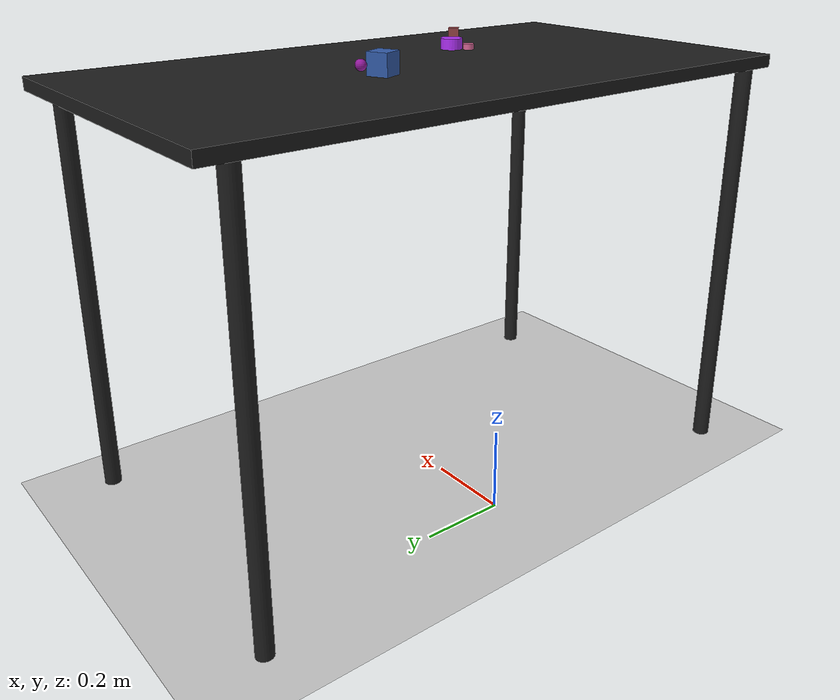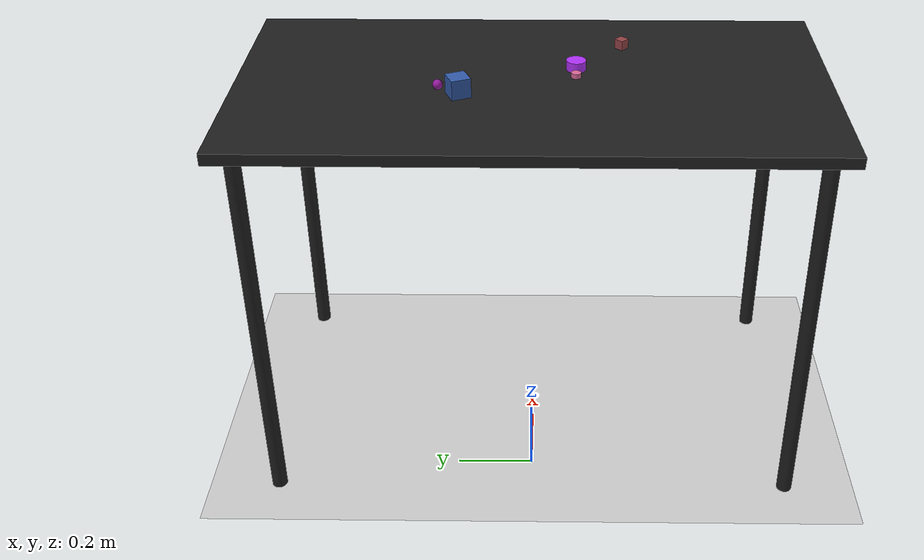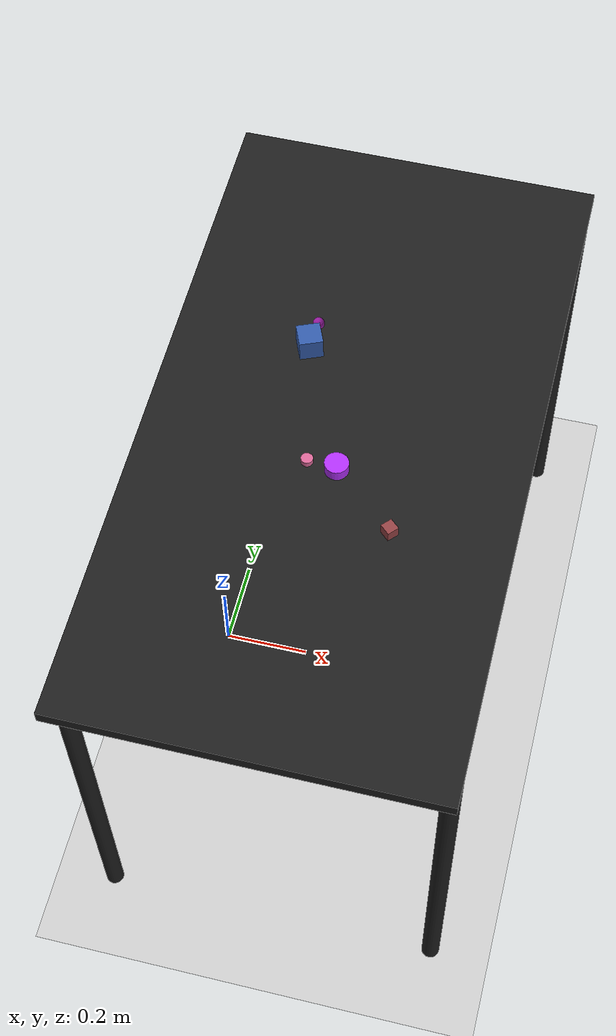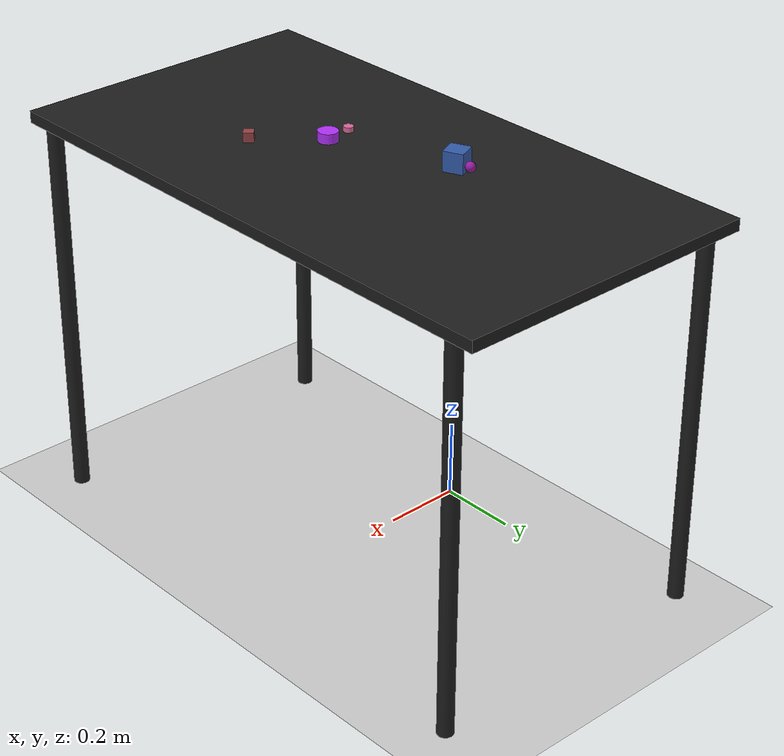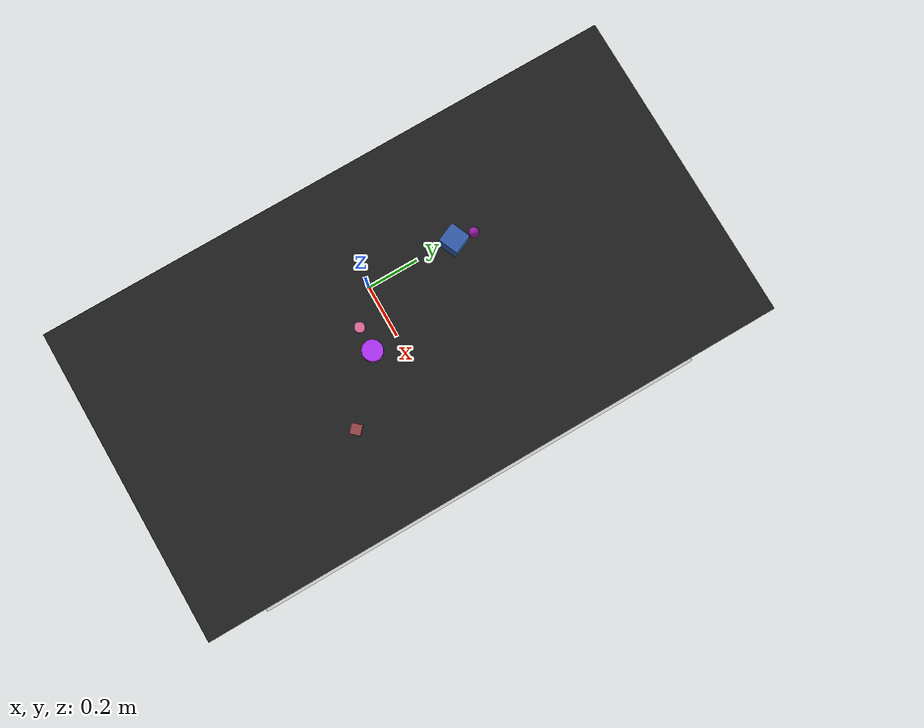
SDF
<?xml version="1.0" ?>
<sdf version="1.6">
  <world name="arm_world">
    <plugin filename="gz-sim-physics-system" name="gz::sim::systems::Physics">
      <engine>
        <filename>libgz-physics-bullet-featherstone-plugin.so</filename>
      </engine>
    </plugin>
    <plugin filename="gz-sim-user-commands-system" name="gz::sim::systems::UserCommands"/>
    <plugin filename="gz-sim-scene-broadcaster-system" name="gz::sim::systems::SceneBroadcaster"/>
    <plugin filename="gz-sim-sensors-system" name="gz::sim::systems::Sensors">
      <render_engine>ogre2</render_engine>
    </plugin>
    <gravity>0.0 0.0 -9.8</gravity>
    <scene>
      <shadows>false</shadows>
    </scene>
    <gui>
      <camera name="user_camera">
        <pose>0.75 -0.75 1.4 0 0.29 2.21</pose>
      </camera>
    </gui>
    <include>
      <uri>https://fuel.gazebosim.org/1.0/OpenRobotics/models/Sun</uri>
    </include>
    <model name="table">
      <static>true</static>
      <include>
        <uri>model://table</uri>
      </include>
      <pose>0.29 0 0 0 0 1.5708</pose>
    </model>
    <model name="ground_plane">
      <static>true</static>
      <link name="link">
        <collision name="collision">
          <geometry>
            <plane>
              <normal>0 0 1</normal>
            </plane>
          </geometry>
          <surface>
            <friction>
              <ode>
                <mu>1.0</mu>
                <mu2>1.0</mu2>
              </ode>
            </friction>
          </surface>
        </collision>
        <visual name="visual">
          <geometry>
            <plane>
              <normal>0 0 1</normal>
              <size>100 100</size>
            </plane>
          </geometry>
          <material>
            <ambient>0.8 0.8 0.8 1</ambient>
            <diffuse>0.8 0.8 0.8 1</diffuse>
            <specular>0.8 0.8 0.8 1</specular>
          </material>
        </visual>
      </link>
    </model>
    <model name="cylinder_s_0">
      <pose>0.249 -0.107 1.05 0 0 5.0</pose>
      <link name="cylinder_s_0_link">
        <inertial>
          <mass>0.05</mass>
          <inertia>
            <ixx>2.04e-7</ixx>
            <iyy>2.04e-7</iyy>
            <izz>3.9e-8</izz>
            <ixy>0</ixy>
            <ixz>0</ixz>
            <iyz>0</iyz>
          </inertia>
        </inertial>
        <collision name="cylinder_s_0_collision">
          <geometry>
            <cylinder>
              <radius>0.0125</radius>
              <length>0.0125</length>
            </cylinder>
          </geometry>
          <surface>
            <friction>
              <ode>
                <mu>0.8</mu>
                <mu2>0.8</mu2>
                <fdir1>0 0 1</fdir1>
                <slip1>0.001</slip1>
                <slip2>0.001</slip2>
              </ode>
              <torsional>
                <coefficient>0.1</coefficient>
                <surface_radius>0.015</surface_radius>
                <use_patch_radius>true</use_patch_radius>
              </torsional>
            </friction>
            <contact>
              <ode>
                <kp>1e5</kp>
                <kd>10</kd>
                <max_vel>0.1</max_vel>
                <min_depth>0.001</min_depth>
                <soft_cfm>0.01</soft_cfm>
                <soft_erp>0.2</soft_erp>
              </ode>
            </contact>
            <bounce>
              <restitution_coefficient>0.2</restitution_coefficient>
              <threshold>0.01</threshold>
            </bounce>
          </surface>
        </collision>
        <visual name="cylinder_s_0_visual">
          <geometry>
            <cylinder>
              <radius>0.0125</radius>
              <length>0.0125</length>
            </cylinder>
          </geometry>
          <material>
            <ambient>0.86 0.41 0.6 1</ambient>
            <diffuse>0.86 0.41 0.6 1</diffuse>
          </material>
        </visual>
        <velocity_decay>
          <linear>1</linear>
          <angular>1</angular>
        </velocity_decay>
      </link>
    </model>
    <model name="cylinder_m_1">
      <pose>0.31 -0.108 1.05 0 0 5.37</pose>
      <link name="cylinder_m_1_link">
        <inertial>
          <mass>0.05</mass>
          <inertia>
            <ixx>2.04e-7</ixx>
            <iyy>2.04e-7</iyy>
            <izz>3.9e-8</izz>
            <ixy>0</ixy>
            <ixz>0</ixz>
            <iyz>0</iyz>
          </inertia>
        </inertial>
        <collision name="cylinder_m_1_collision">
          <geometry>
            <cylinder>
              <radius>0.025</radius>
              <length>0.025</length>
            </cylinder>
          </geometry>
          <surface>
            <friction>
              <ode>
                <mu>0.8</mu>
                <mu2>0.8</mu2>
                <fdir1>0 0 1</fdir1>
                <slip1>0.001</slip1>
                <slip2>0.001</slip2>
              </ode>
              <torsional>
                <coefficient>0.1</coefficient>
                <surface_radius>0.015</surface_radius>
                <use_patch_radius>true</use_patch_radius>
              </torsional>
            </friction>
            <contact>
              <ode>
                <kp>1e5</kp>
                <kd>10</kd>
                <max_vel>0.1</max_vel>
                <min_depth>0.001</min_depth>
                <soft_cfm>0.01</soft_cfm>
                <soft_erp>0.2</soft_erp>
              </ode>
            </contact>
            <bounce>
              <restitution_coefficient>0.2</restitution_coefficient>
              <threshold>0.01</threshold>
            </bounce>
          </surface>
        </collision>
        <visual name="cylinder_m_1_visual">
          <geometry>
            <cylinder>
              <radius>0.025</radius>
              <length>0.025</length>
            </cylinder>
          </geometry>
          <material>
            <ambient>0.7 0.19 0.98 1</ambient>
            <diffuse>0.7 0.19 0.98 1</diffuse>
          </material>
        </visual>
        <velocity_decay>
          <linear>1</linear>
          <angular>1</angular>
        </velocity_decay>
      </link>
    </model>
    <model name="cube_m_2">
      <pose>0.182 0.181 1.05 0 0 0.4</pose>
      <link name="cube_m_2_link">
        <inertial>
          <mass>0.05</mass>
          <inertia>
            <ixx>2.04e-7</ixx>
            <iyy>2.04e-7</iyy>
            <izz>3.9e-8</izz>
            <ixy>0</ixy>
            <ixz>0</ixz>
            <iyz>0</iyz>
          </inertia>
        </inertial>
        <collision name="cube_m_2_collision">
          <geometry>
            <box>
              <size>0.05 0.05 0.05</size>
            </box>
          </geometry>
          <surface>
            <friction>
              <ode>
                <mu>0.8</mu>
                <mu2>0.8</mu2>
                <fdir1>0 0 1</fdir1>
                <slip1>0.001</slip1>
                <slip2>0.001</slip2>
              </ode>
              <torsional>
                <coefficient>0.1</coefficient>
                <surface_radius>0.015</surface_radius>
                <use_patch_radius>true</use_patch_radius>
              </torsional>
            </friction>
            <contact>
              <ode>
                <kp>1e5</kp>
                <kd>10</kd>
                <max_vel>0.1</max_vel>
                <min_depth>0.001</min_depth>
                <soft_cfm>0.01</soft_cfm>
                <soft_erp>0.2</soft_erp>
              </ode>
            </contact>
            <bounce>
              <restitution_coefficient>0.2</restitution_coefficient>
              <threshold>0.01</threshold>
            </bounce>
          </surface>
        </collision>
        <visual name="cube_m_2_visual">
          <geometry>
            <box>
              <size>0.05 0.05 0.05</size>
            </box>
          </geometry>
          <material>
            <ambient>0.2 0.36 0.67 1</ambient>
            <diffuse>0.2 0.36 0.67 1</diffuse>
          </material>
        </visual>
        <velocity_decay>
          <linear>1</linear>
          <angular>1</angular>
        </velocity_decay>
      </link>
    </model>
    <model name="sphere_s_3">
      <pose>0.189 0.231 1.05 0 0 4.15</pose>
      <link name="sphere_s_3_link">
        <inertial>
          <mass>0.05</mass>
          <inertia>
            <ixx>2.04e-7</ixx>
            <iyy>2.04e-7</iyy>
            <izz>3.9e-8</izz>
            <ixy>0</ixy>
            <ixz>0</ixz>
            <iyz>0</iyz>
          </inertia>
        </inertial>
        <collision name="sphere_s_3_collision">
          <geometry>
            <sphere>
              <radius>0.0125</radius>
            </sphere>
          </geometry>
          <surface>
            <friction>
              <ode>
                <mu>0.8</mu>
                <mu2>0.8</mu2>
                <fdir1>0 0 1</fdir1>
                <slip1>0.001</slip1>
                <slip2>0.001</slip2>
              </ode>
              <torsional>
                <coefficient>0.1</coefficient>
                <surface_radius>0.015</surface_radius>
                <use_patch_radius>true</use_patch_radius>
              </torsional>
            </friction>
            <contact>
              <ode>
                <kp>1e5</kp>
                <kd>10</kd>
                <max_vel>0.1</max_vel>
                <min_depth>0.001</min_depth>
                <soft_cfm>0.01</soft_cfm>
                <soft_erp>0.2</soft_erp>
              </ode>
            </contact>
            <bounce>
              <restitution_coefficient>0.2</restitution_coefficient>
              <threshold>0.01</threshold>
            </bounce>
          </surface>
        </collision>
        <visual name="sphere_s_3_visual">
          <geometry>
            <sphere>
              <radius>0.0125</radius>
            </sphere>
          </geometry>
          <material>
            <ambient>0.57 0.1 0.61 1</ambient>
            <diffuse>0.57 0.1 0.61 1</diffuse>
          </material>
        </visual>
        <velocity_decay>
          <linear>1</linear>
          <angular>1</angular>
        </velocity_decay>
      </link>
    </model>
    <model name="cube_s_4">
      <pose>0.445 -0.228 1.05 0 0 2.4</pose>
      <link name="cube_s_4_link">
        <inertial>
          <mass>0.05</mass>
          <inertia>
            <ixx>2.04e-7</ixx>
            <iyy>2.04e-7</iyy>
            <izz>3.9e-8</izz>
            <ixy>0</ixy>
            <ixz>0</ixz>
            <iyz>0</iyz>
          </inertia>
        </inertial>
        <collision name="cube_s_4_collision">
          <geometry>
            <box>
              <size>0.025 0.025 0.025</size>
            </box>
          </geometry>
          <surface>
            <friction>
              <ode>
                <mu>0.8</mu>
                <mu2>0.8</mu2>
                <fdir1>0 0 1</fdir1>
                <slip1>0.001</slip1>
                <slip2>0.001</slip2>
              </ode>
              <torsional>
                <coefficient>0.1</coefficient>
                <surface_radius>0.015</surface_radius>
                <use_patch_radius>true</use_patch_radius>
              </torsional>
            </friction>
            <contact>
              <ode>
                <kp>1e5</kp>
                <kd>10</kd>
                <max_vel>0.1</max_vel>
                <min_depth>0.001</min_depth>
                <soft_cfm>0.01</soft_cfm>
                <soft_erp>0.2</soft_erp>
              </ode>
            </contact>
            <bounce>
              <restitution_coefficient>0.2</restitution_coefficient>
              <threshold>0.01</threshold>
            </bounce>
          </surface>
        </collision>
        <visual name="cube_s_4_visual">
          <geometry>
            <box>
              <size>0.025 0.025 0.025</size>
            </box>
          </geometry>
          <material>
            <ambient>0.58 0.26 0.27 1</ambient>
            <diffuse>0.58 0.26 0.27 1</diffuse>
          </material>
        </visual>
        <velocity_decay>
          <linear>1</linear>
          <angular>1</angular>
        </velocity_decay>
      </link>
    </model>
  </world>
</sdf>

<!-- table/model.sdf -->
<sdf version="1.5">
  <model name="table">
    <static>true</static>
    <link name="link">
      <collision name="surface">
        <pose>0 0 1.0 0 0 0</pose>
        <geometry>
          <box>
            <size>1.5 0.8 0.03</size>
          </box>
        </geometry>
        <surface>
          <friction>
            <ode>
              <mu>0.6</mu>
              <mu2>0.6</mu2>
            </ode>
          </friction>
        </surface>
      </collision>
      <visual name="surface">
        <pose>0 0 1.0 0 0 0</pose>
        <geometry>
          <box>
            <size>1.5 0.8 0.03</size>
          </box>
        </geometry>
        <material>
          <script>
            <uri>file://media/materials/scripts/gazebo.material</uri>
            <name>Gazebo/Black</name>
          </script>
        </material>
      </visual>
      <collision name="front_left_leg">
        <pose>0.68 0.38 0.5 0 0 0</pose>
        <geometry>
          <cylinder>
            <radius>0.02</radius>
            <length>1.0</length>
          </cylinder>
        </geometry>
      </collision>
      <visual name="front_left_leg">
        <pose>0.68 0.38 0.5 0 0 0</pose>
        <geometry>
          <cylinder>
            <radius>0.02</radius>
            <length>1.0</length>
          </cylinder>
        </geometry>
        <material>
          <script>
            <uri>file://media/materials/scripts/gazebo.material</uri>
            <name>Gazebo/Black</name>
          </script>
        </material>
      </visual>
      <collision name="front_right_leg">
        <pose>0.68 -0.38 0.5 0 0 0</pose>
        <geometry>
          <cylinder>
            <radius>0.02</radius>
            <length>1.0</length>
          </cylinder>
        </geometry>
      </collision>
      <visual name="front_right_leg">
        <pose>0.68 -0.38 0.5 0 0 0</pose>
        <geometry>
          <cylinder>
            <radius>0.02</radius>
            <length>1.0</length>
          </cylinder>
        </geometry>
        <material>
          <script>
            <uri>file://media/materials/scripts/gazebo.material</uri>
            <name>Gazebo/Black</name>
          </script>
        </material>
      </visual>
      <collision name="back_right_leg">
        <pose>-0.68 -0.38 0.5 0 0 0</pose>
        <geometry>
          <cylinder>
            <radius>0.02</radius>
            <length>1.0</length>
          </cylinder>
        </geometry>
      </collision>
      <visual name="back_right_leg">
        <pose>-0.68 -0.38 0.5 0 0 0</pose>
        <geometry>
          <cylinder>
            <radius>0.02</radius>
            <length>1.0</length>
          </cylinder>
        </geometry>
        <material>
          <script>
            <uri>file://media/materials/scripts/gazebo.material</uri>
            <name>Gazebo/Black</name>
          </script>
        </material>
      </visual>
      <collision name="back_left_leg">
        <pose>-0.68 0.38 0.5 0 0 0</pose>
        <geometry>
          <cylinder>
            <radius>0.02</radius>
            <length>1.0</length>
          </cylinder>
        </geometry>
      </collision>
      <visual name="back_left_leg">
        <pose>-0.68 0.38 0.5 0 0 0</pose>
        <geometry>
          <cylinder>
            <radius>0.02</radius>
            <length>1.0</length>
          </cylinder>
        </geometry>
        <material>
          <script>
            <uri>file://media/materials/scripts/gazebo.material</uri>
            <name>Gazebo/Black</name>
          </script>
        </material>
      </visual>
    </link>
  </model>
</sdf>
